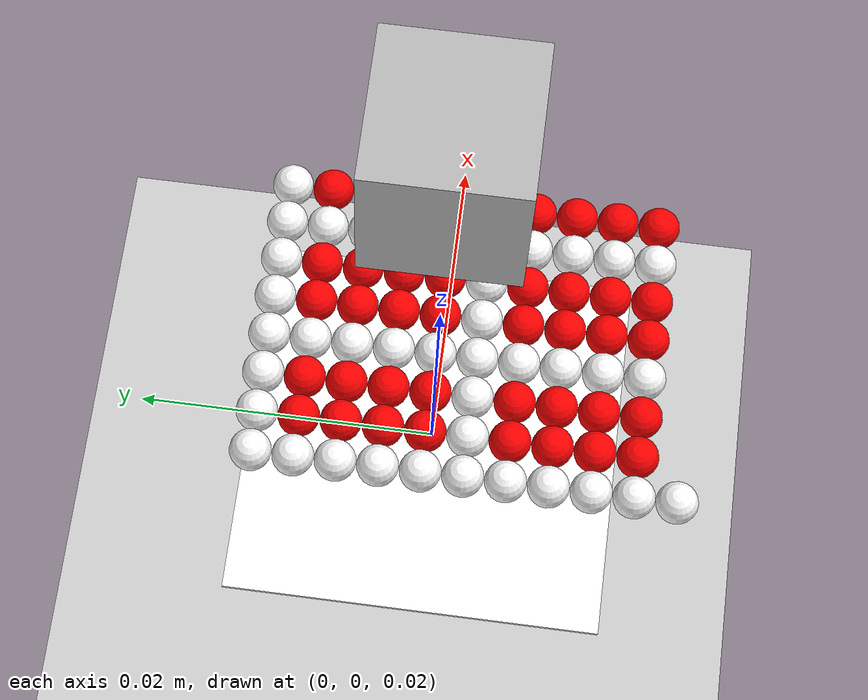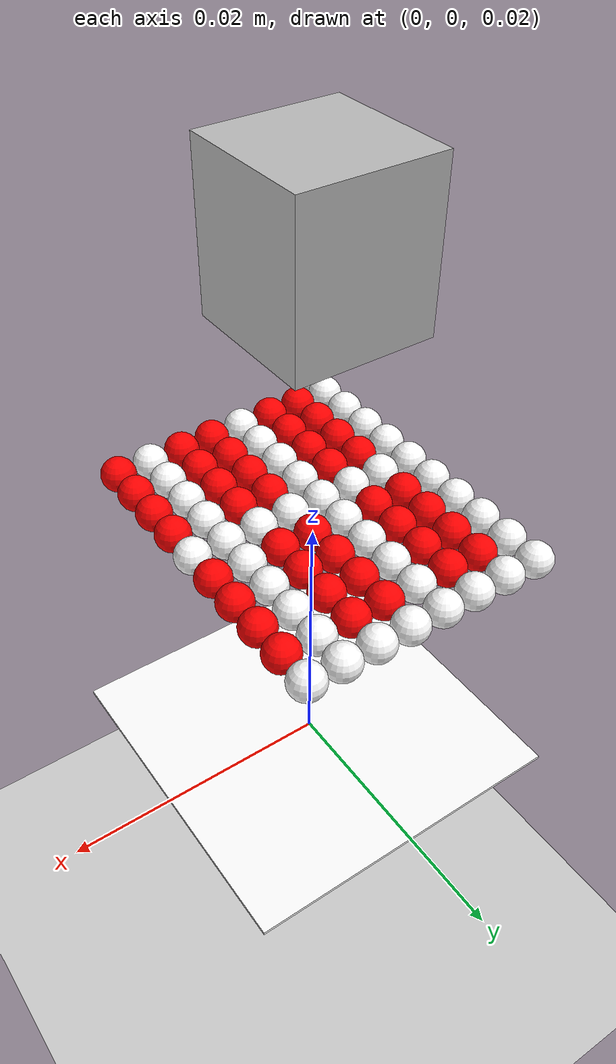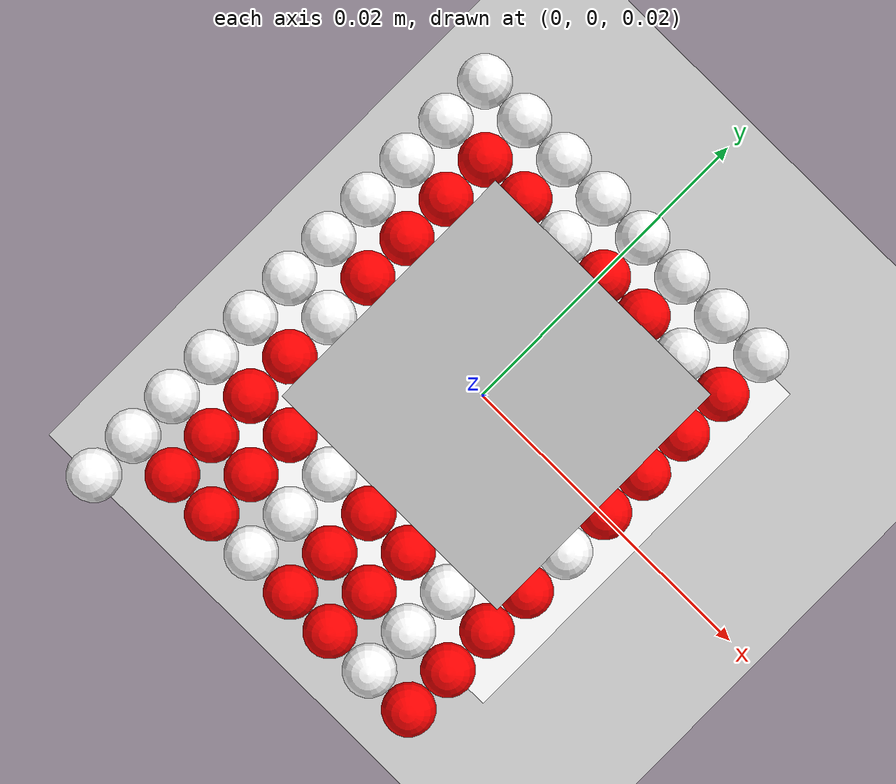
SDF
<?xml version="1.0"?>
<gazebo version="1.3">
<world name="default">

<include>
  <uri>model://ground_plane</uri>
</include>

<include>
  <uri>model://sun</uri>
</include>

<include>
  <uri>model://spring_board</uri>
</include>

<physics type="ode">
  <gravity>0.0 0.0 0.0</gravity>
  <ode>
    <solver>
      <iters>150</iters>
    </solver>
  </ode>
</physics>

<include>
  <uri>model://fixed_box</uri>
  <pose>0 0 0.06 0 0 0</pose>
</include>

<gui fullscreen='0'>
  <camera name='user_camera'>
    <pose>0.110687 -0.111341 0.060849 0 0.239642 2.27619</pose>
    <view_controller>orbit</view_controller>
  </camera>
</gui>

</world>
</gazebo>

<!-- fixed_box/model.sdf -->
<sdf version="1.4">
    <model name="box">
      <pose>0 0 0 0 0 0</pose>
      <link name="link">
        <pose>0 0 0 0 0 0</pose>
        <inertial>
          <mass>0.25</mass>
        </inertial>

        <collision name="collision">
          <geometry>
            <box>
              <size>0.009 0.009 0.01</size>
            </box>
          </geometry>
        </collision>

        <visual name="visual">
          <geometry>
            <box>
              <size>0.009 0.009 0.01</size>
            </box>
          </geometry>
        </visual>
       </link>
      <joint name = "my_mass_joint" type="prismatic">
        <parent>world</parent>
          <child>link</child>
          <axis>
            <limit>
               <lower>0</lower>
               <upper>0</upper>
            </limit>
            <xyz>0 0 1</xyz>
          </axis>
      </joint>
      <plugin name="mass_joint" filename="libMassJoint.so" />
    </model>
</sdf>
